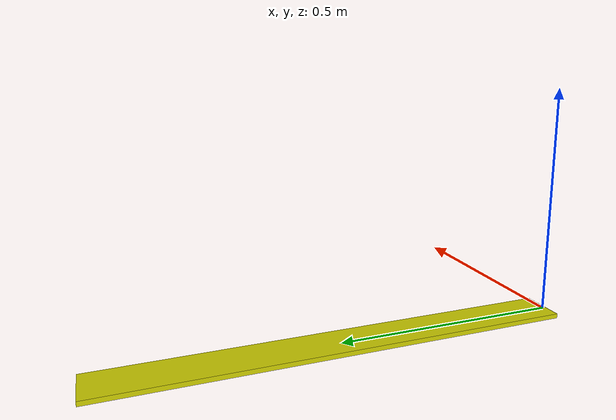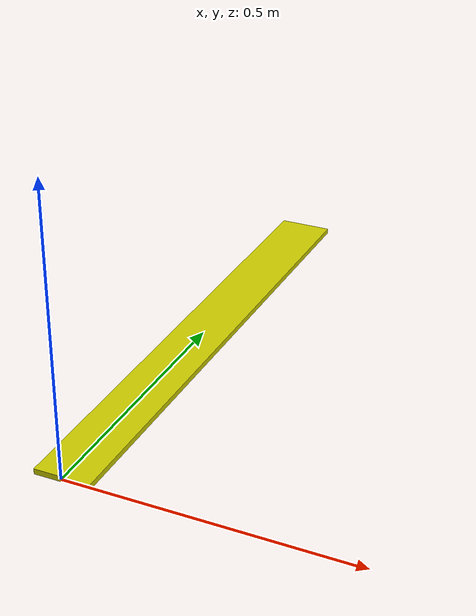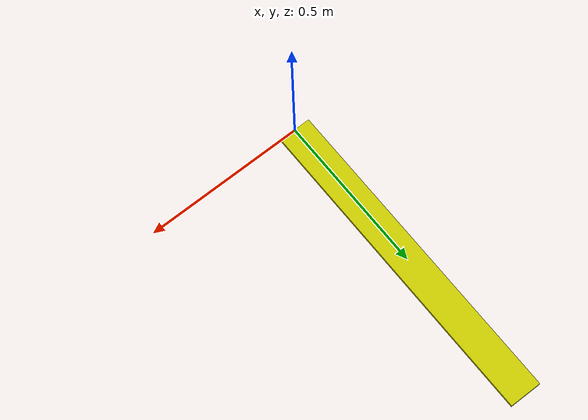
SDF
<?xml version="1.0" ?>
<sdf version="1.6">
  <model name="pipe_small">
    <static>true</static>

    <link name="link">
      <visual name="visual">
        <geometry>
          <mesh>
            <uri>model://pipe_small/meshes/pipe_small.dae</uri>
            <scale>1 1 1</scale>
          </mesh>
        </geometry>
      </visual>

      <collision name="collision">
        <geometry>
          <mesh>
            <uri>model://pipe_small/meshes/pipe_small.dae</uri>
            <scale>1 1 1</scale>
          </mesh>
        </geometry>
      </collision>
    </link>

  </model>
</sdf>
